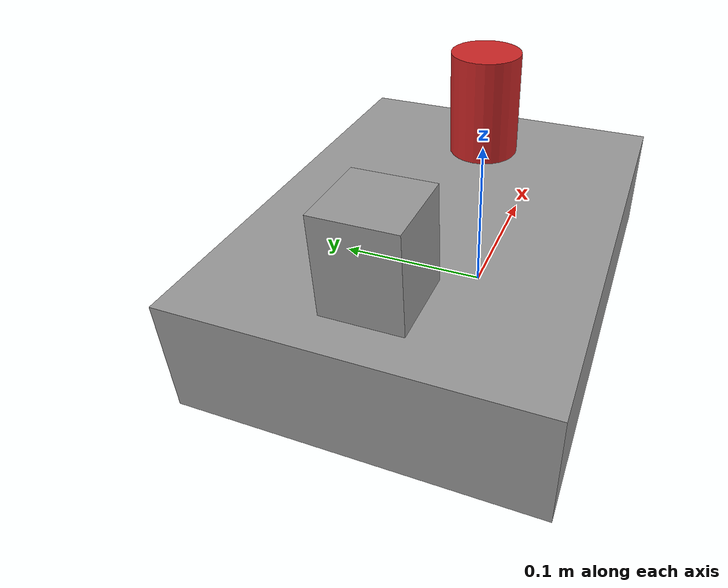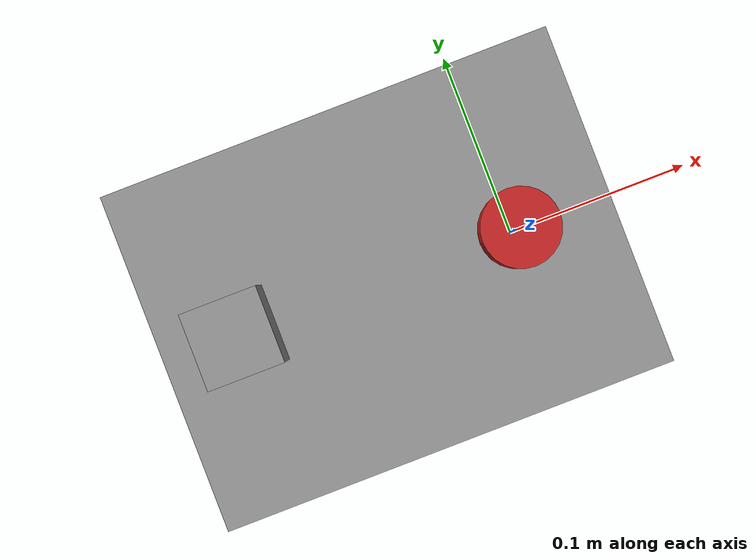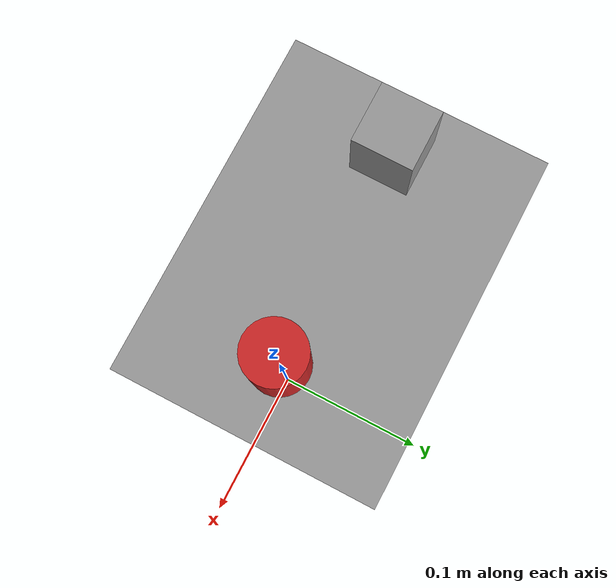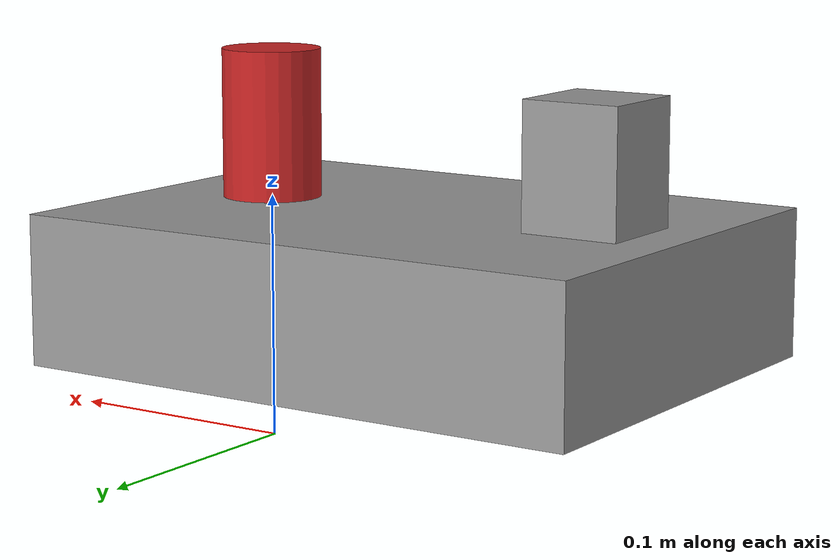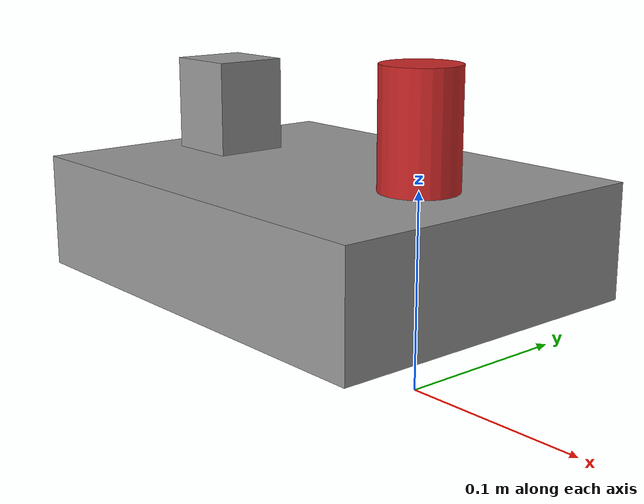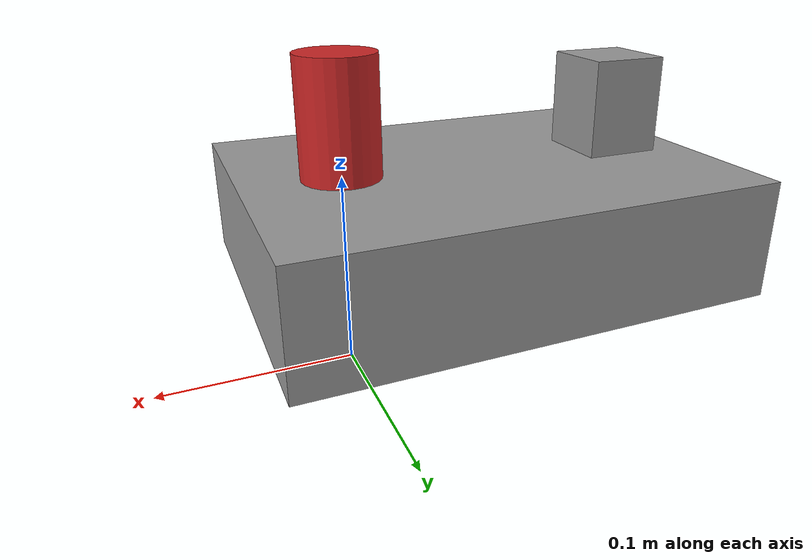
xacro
<?xml version="1.0"?>
<robot name="dtw_robot" xmlns:xacro="http://ros.org/wiki/xacro">
  <xacro:include filename="$(find laser_lecture)/xacro/laser_macro.xacro" />

  <link name="base_link"/>
  <joint name="body_joint" type="fixed">
    <parent link="base_link"/>
    <child  link="body_link"/>
    <origin xyz="-0.07 0 0.07" rpy="0 0 0"/>
  </joint>
  <link name="body_link">
    <inertial>
      <origin xyz="0 0 0" rpy="0 0 0"/>
      <mass value="1.0"/>
      <inertia ixx="0.001" ixy="0.0" ixz="0.0" iyy="0.001" iyz="0.0" izz="0.001"/>
    </inertial>
    <visual>
      <origin xyz="0 0 0" rpy="0 0 0" />
      <geometry>
        <box size="0.24 0.18 0.06" />
      </geometry>
      <material name="gray" />
    </visual>
    <collision>
      <origin xyz="0 0 0" rpy="0 0 0" />
      <geometry>
        <box size="0.24 0.178 0.06" />
      </geometry>
    </collision>
  </link>
  <gazebo reference="body_link">
    <material>Gazebo/Gray</material>
  </gazebo>

  <joint name="nub_joint" type="fixed">
    <parent link="base_link"/>
    <child  link="nub_link"/>
    <origin xyz="-0.15 0 0.10" rpy="0 0 0"/>
  </joint>
  <link name="nub_link">
    <visual>
      <origin xyz="0 0 0" rpy="0 0 0" />
      <geometry>
        <box size="0.04 0.04 0.10" />
      </geometry>
      <material name="gray" />
    </visual>
    <collision>
      <origin xyz="0 0 0" rpy="0 0 0" />
      <geometry>
        <box size="0.04 0.04 0.10" />
      </geometry>
      <material name="gray" />
    </collision>
  </link>
  <gazebo reference="body_link">
    <material>Gazebo/Gray</material>
  </gazebo>

  <xacro:laser_macro prefix="front_laser" parent="base_link" xyz="0 0 0.13"/>

  <gazebo>
    <plugin name="gazebo_ros_control" filename="libgazebo_ros_control.so">
      <robotNamespace>/dtw_robot</robotNamespace>
      <robotSimType>gazebo_ros_control/DefaultRobotHWSim</robotSimType>
      <legacyModeNS>true</legacyModeNS>
    </plugin>
  </gazebo>
</robot>

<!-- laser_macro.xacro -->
<robot name="dtw_robot" xmlns:xacro="http://ros.org/wiki/xacro">
  <xacro:macro name="laser_macro" params="parent prefix xyz">
    <joint name="${prefix}_joint" type="fixed">
      <parent link="${parent}"/>
      <child  link="${prefix}_link"/>
      <origin xyz="${xyz}" rpy="0 0 0"/>
    </joint>
    <link name="${prefix}_link">
      <visual>
        <origin xyz="0 0 0" rpy="0 0 0" />
        <geometry>
          <cylinder radius="0.02" length="0.06" />
        </geometry>
        <material name="red" />
      </visual>
      <collision>
        <origin xyz="0 0 0" rpy="0 0 0"/>
        <geometry>
          <cylinder radius="0.02" length="0.06" />
        </geometry>
      </collision>
    </link>
    <gazebo reference="${prefix}_link">
      <material>Gazebo/Red</material>
      <sensor type="ray" name="${prefix}">
        <pose>0 0 0 0 0 0</pose>
        <visualize>false</visualize>
        <update_rate>10</update_rate>
        <ray>
          <scan>
            <horizontal>
              <samples>400</samples>
              <resolution>1</resolution>
              <min_angle>${radians(-180)}</min_angle>
              <max_angle>${radians( 180)}</max_angle>
            </horizontal>
          </scan>
          <range>
            <min>0.05</min>
            <max>20.0</max>
            <resolution>0.01</resolution>
          </range>
          <noise>
            <type>gaussian</type>
            <mean>0.0</mean>
            <stddev>0.01</stddev>
          </noise>
        </ray>
        <plugin name="gazebo_ros_lidar_controller" filename="libgazebo_ros_laser.so">
          <topicName>/${prefix}/scan</topicName>
          <frameName>${prefix}_link</frameName>
        </plugin>
      </sensor>
    </gazebo>
  </xacro:macro>
</robot>
